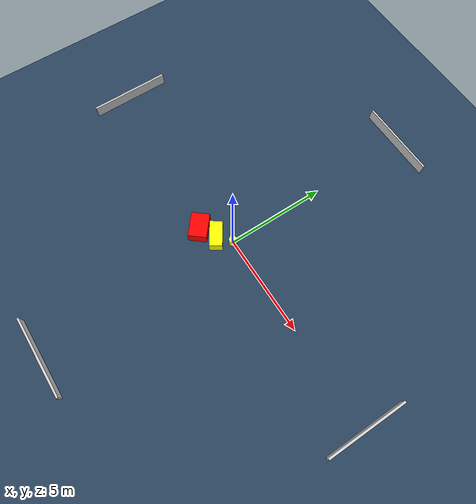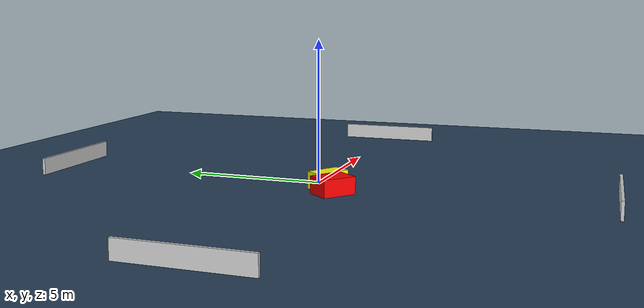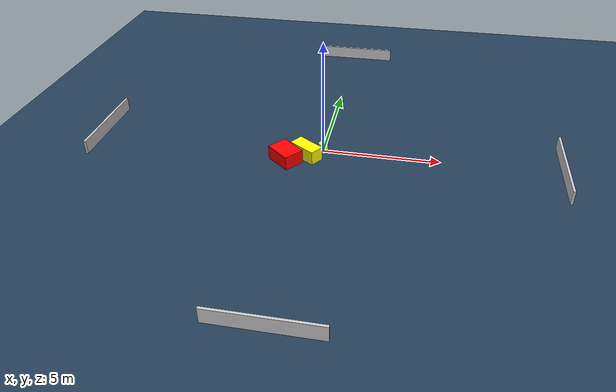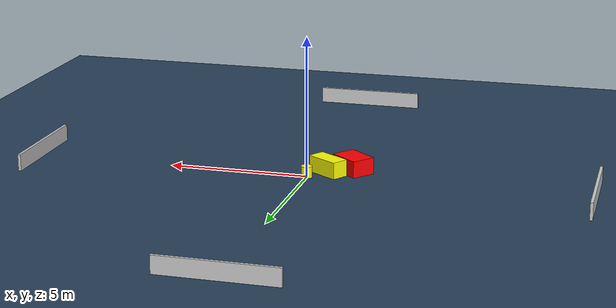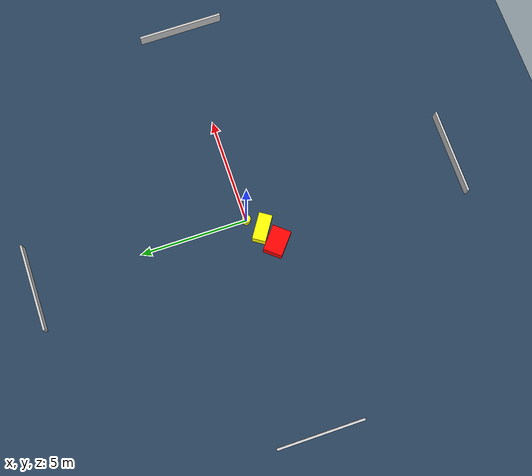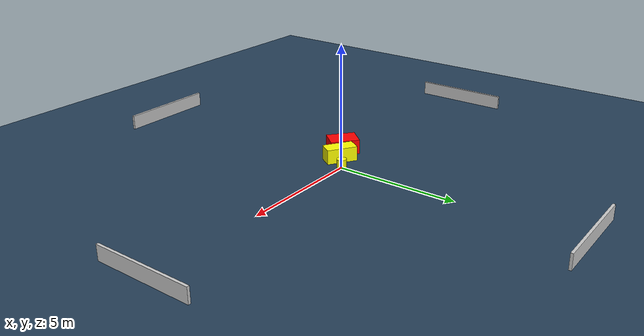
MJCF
<?xml version="1.0" ?>
<mujoco model="generated_environment">
  <option timestep="0.01" integrator="RK4" cone="elliptic"/>
  <default>
    <geom density="1"/>
  </default>
  <asset>
    <texture builtin="gradient" height="3072" name="skybox" rgb1="0.3 0.5 0.7" rgb2="0 0 0" type="skybox" width="512"/>
    <texture builtin="checker" height="300" name="groundplane" rgb1="0.2 0.3 0.4" rgb2="0.1 0.2 0.3" type="2d" width="300"/>
    <material name="groundplane" reflectance="0.2" texrepeat="5 5" texture="groundplane"/>
  </asset>
  <worldbody>
    <light dir="0 0 -1" directional="true" pos="0 0 1.5"/>
    <geom condim="3" friction="0.5 0.005 0.001" material="groundplane" name="floor" pos="0 0 0" size="0 0 0.05" type="plane"/>
    <body name="walls">
      <geom name="wall_1" condim="4" pos="-10.0 0.0 0.3" rgba="0.800000011920929 0.800000011920929 0.800000011920929 1.0" size="0.05 2.0 0.3" type="box"/>
      <geom name="wall_2" condim="4" pos="10.0 0.0 0.3" rgba="0.800000011920929 0.800000011920929 0.800000011920929 1.0" size="0.05 2.0 0.3" type="box"/>
      <geom name="wall_3" condim="4" pos="0.0 -10.0 0.3" rgba="0.800000011920929 0.800000011920929 0.800000011920929 1.0" size="2.0 0.05 0.3" type="box"/>
      <geom name="wall_4" condim="4" pos="0.0 10.0 0.3" rgba="0.800000011920929 0.800000011920929 0.800000011920929 1.0" size="2.0 0.05 0.3" type="box"/>
    </body>
    <body name="robot">
      <joint name="joint_x" type="slide" pos="0 0 0" axis="1 0 0"/>
      <joint name="joint_y" type="slide" pos="0 0 0" axis="0 1 0"/>
      <geom name="robot" type="cylinder" pos="0.0 0.0 0.2" size="0.2 0.2 0.0" mass="5.0" friction="1.0 0.005 0.0001" condim="4" rgba="1.0 1.0 0.0 1.0"/>
    </body>
    <body name="obstacle_1_movable">
      <geom name="obstacle_1_movable" condim="4" pos="-0.6340218487715179 -0.5453517321111714 0.3" euler="0 0 236.57265953719337" friction="0.0 0.005 0.001" rgba="1.0 1.0 0.0 1.0" size="0.31107130935908406 0.6310147633654017 0.3" type="box" mass="0.1"/>
      <joint type="free"/>
    </body>
    <body name="obstacle_2_static">
      <geom name="obstacle_2_static" condim="4" pos="-1.4415367999424953 -0.981310996228129 0.3" euler="0 0 140.08467009889495" friction="0.0 0.005 0.001" rgba="1.0 0.0 0.0 1.0" size="0.603914489877162 0.44477878577836083 0.3" type="box"/>
    </body>
  </worldbody>
  <actuator>
    <motor name="actuator_x" joint="joint_x" gear="1" ctrlrange="-1 1"/>
    <motor name="actuator_y" joint="joint_y" gear="1" ctrlrange="-1 1"/>
  </actuator>
</mujoco>
